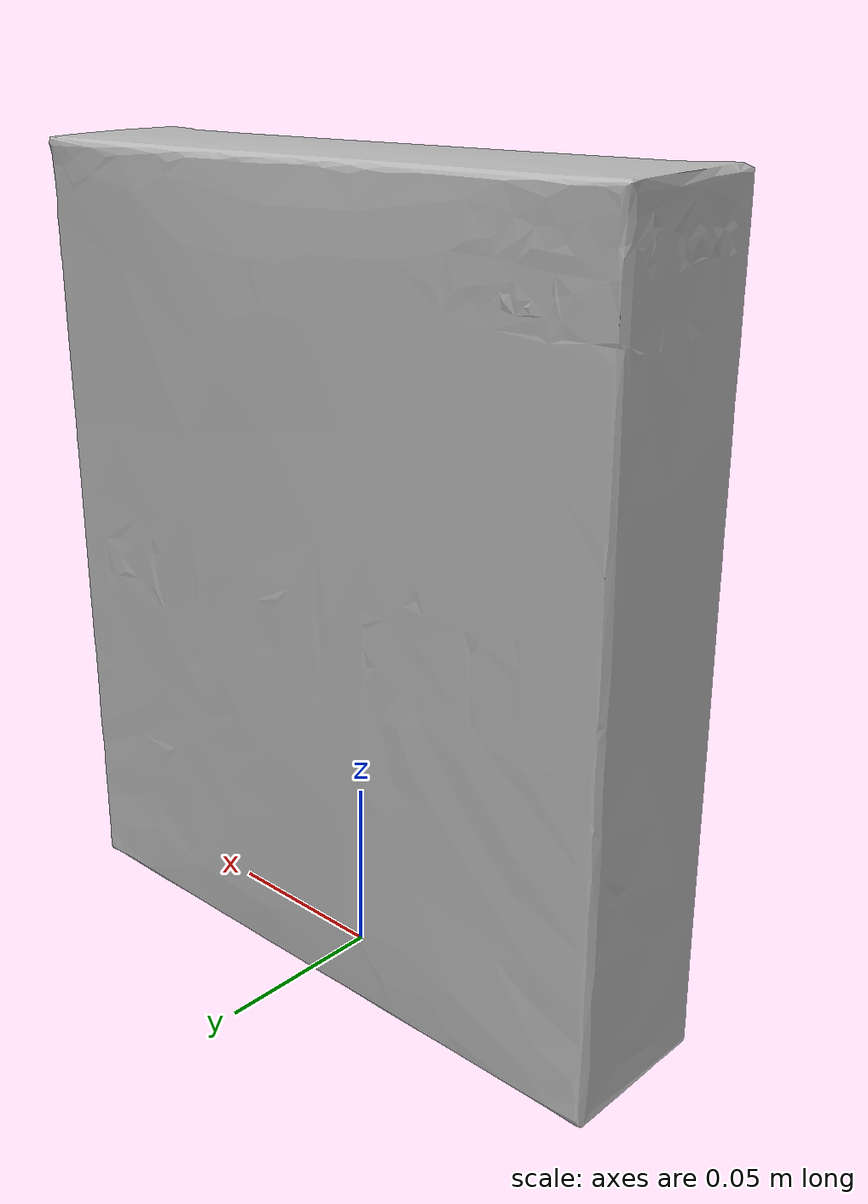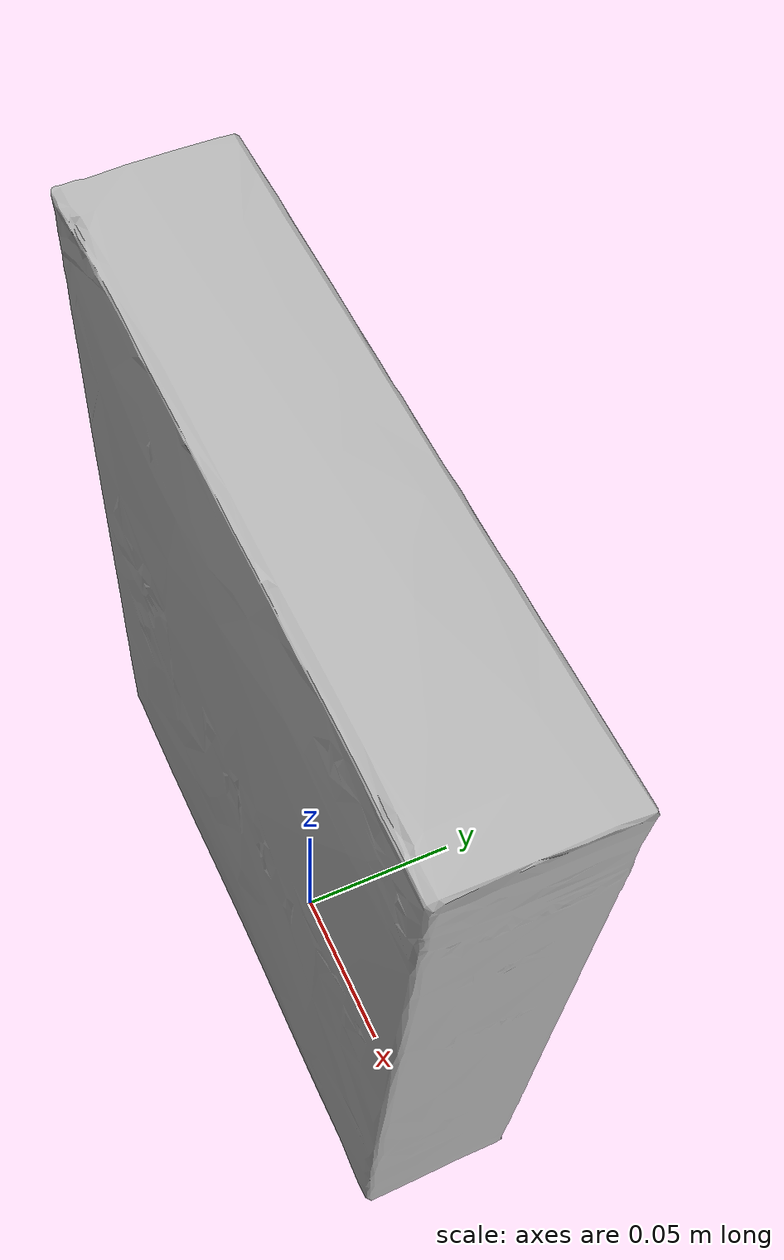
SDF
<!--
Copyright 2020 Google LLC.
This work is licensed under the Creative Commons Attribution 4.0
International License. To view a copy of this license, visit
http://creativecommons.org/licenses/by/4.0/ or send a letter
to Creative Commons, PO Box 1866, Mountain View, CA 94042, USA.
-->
<?xml version="1.0" ?>
<sdf version="1.6">
  <model name="Wrigley_Orbit_Mint_Variety_18_Count">
    <link name="link_0">
      <visual name="visual">
        <geometry>
          <mesh>
            <uri>meshes/model.obj</uri>
          </mesh>
        </geometry>
      </visual>
      <collision name="collision_0">
        <geometry>
          <mesh>
            <uri>meshes/model.obj</uri>
          </mesh>
        </geometry>
      </collision>
    </link>
  </model>
</sdf>
